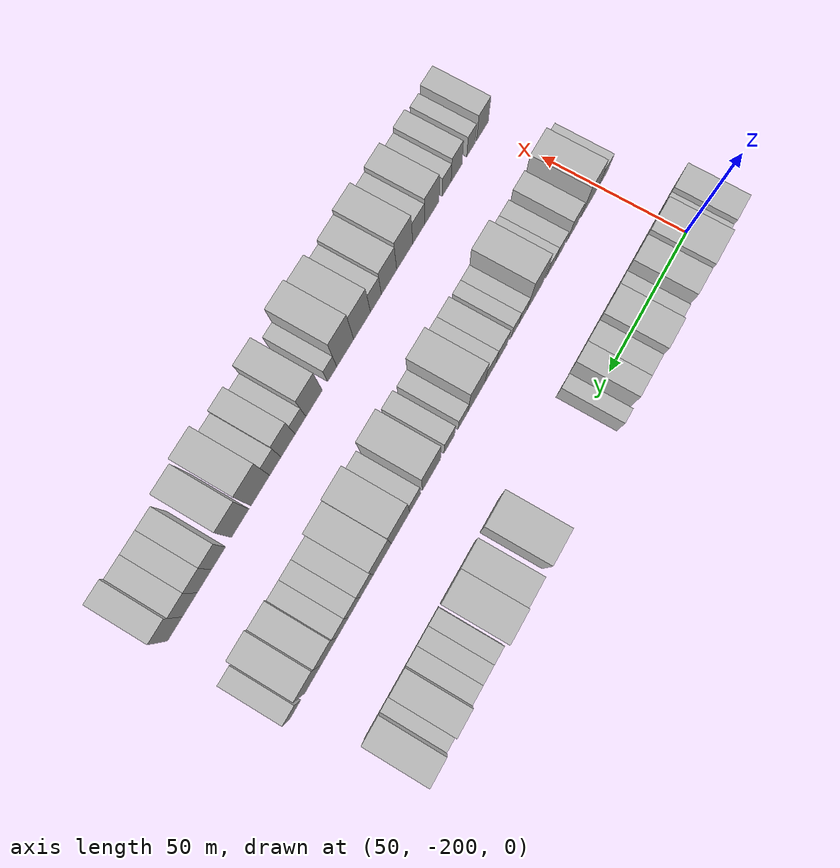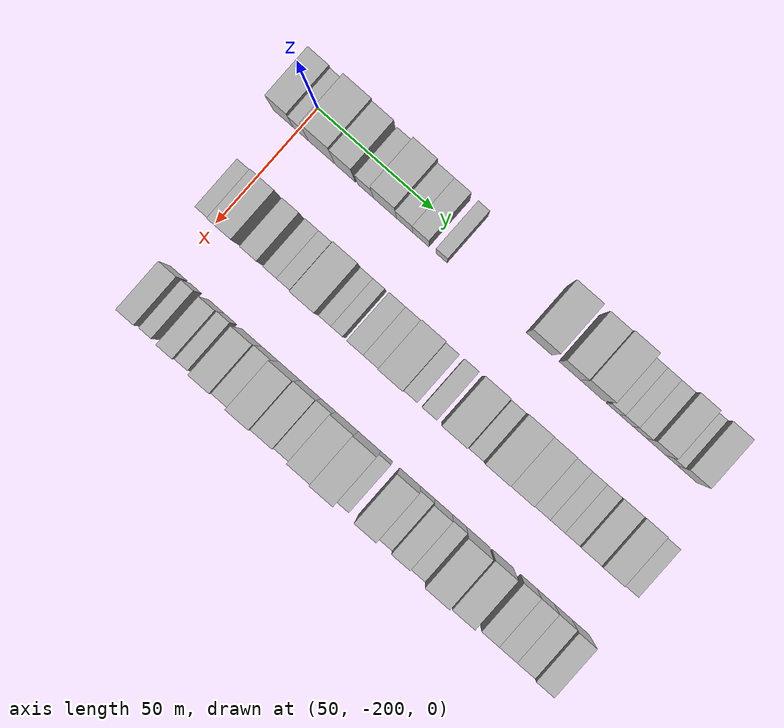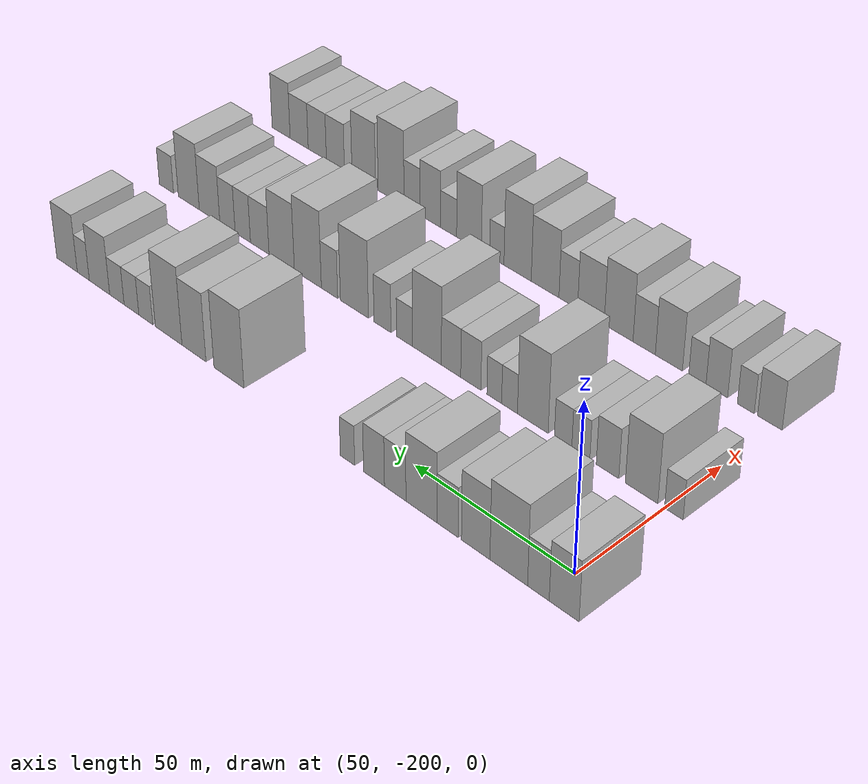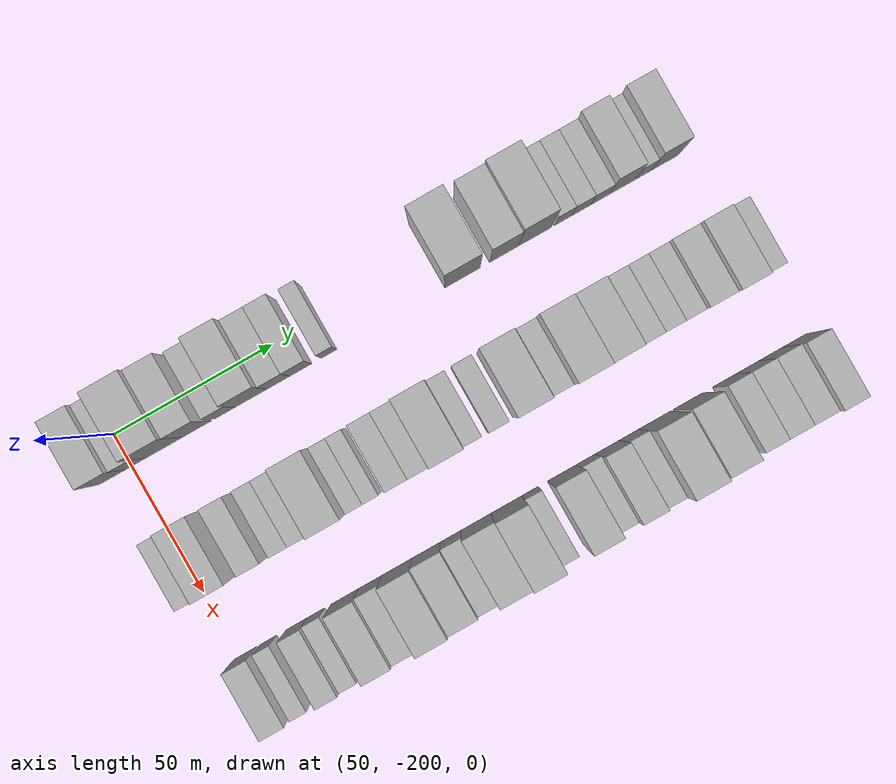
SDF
<sdf version="1.6">
 <world name="default">
  <model name="building_20">
   <static>1</static>
   <pose>50.0000 -205.8863 0 0.000000 0.000000 0.000000</pose>
   <link name="link">
    <pose>0 0 9.00 0 0 0</pose>
    <collision name="collision"><geometry><box><size>20.0000 8.7325 18.0000</size></box></geometry></collision>
    <visual name="visual">
     <cast_shadows>0</cast_shadows>
     <geometry><box><size>20.0000 8.7325 18.0000</size></box></geometry>
     <material>
      <script>
       <uri>model://HANNAS_wall/materials/scripts</uri>
       <uri>model://HANNAS_wall/materials/textures</uri>
       <name>vrc/HANNAS_wall</name>
      </script>
     </material>
    </visual>
   </link>
  </model>
  <model name="building_21">
   <static>1</static>
   <pose>50.0000 -198.3036 0 0.000000 0.000000 0.000000</pose>
   <link name="link">
    <pose>0 0 7.50 0 0 0</pose>
    <collision name="collision"><geometry><box><size>20.0000 6.4328 15.0000</size></box></geometry></collision>
    <visual name="visual">
     <cast_shadows>0</cast_shadows>
     <geometry><box><size>20.0000 6.4328 15.0000</size></box></geometry>
     <material>
      <script>
       <uri>model://HANNAS_wall/materials/scripts</uri>
       <uri>model://HANNAS_wall/materials/textures</uri>
       <name>vrc/HANNAS_wall</name>
      </script>
     </material>
    </visual>
   </link>
  </model>
  <model name="building_22">
   <static>1</static>
   <pose>50.0000 -189.3780 0 0.000000 0.000000 0.000000</pose>
   <link name="link">
    <pose>0 0 12.00 0 0 0</pose>
    <collision name="collision"><geometry><box><size>20.0000 11.4183 24.0000</size></box></geometry></collision>
    <visual name="visual">
     <cast_shadows>0</cast_shadows>
     <geometry><box><size>20.0000 11.4183 24.0000</size></box></geometry>
     <material>
      <script>
       <uri>model://HANNAS_wall/materials/scripts</uri>
       <uri>model://HANNAS_wall/materials/textures</uri>
       <name>vrc/HANNAS_wall</name>
      </script>
     </material>
    </visual>
   </link>
  </model>
  <model name="building_23">
   <static>1</static>
   <pose>50.0000 -179.2558 0 0.000000 0.000000 0.000000</pose>
   <link name="link">
    <pose>0 0 10.50 0 0 0</pose>
    <collision name="collision"><geometry><box><size>20.0000 8.8261 21.0000</size></box></geometry></collision>
    <visual name="visual">
     <cast_shadows>0</cast_shadows>
     <geometry><box><size>20.0000 8.8261 21.0000</size></box></geometry>
     <material>
      <script>
       <uri>model://HANNAS_wall/materials/scripts</uri>
       <uri>model://HANNAS_wall/materials/textures</uri>
       <name>vrc/HANNAS_wall</name>
      </script>
     </material>
    </visual>
   </link>
  </model>
  <model name="building_24">
   <static>1</static>
   <pose>50.0000 -170.4617 0 0.000000 0.000000 0.000000</pose>
   <link name="link">
    <pose>0 0 7.50 0 0 0</pose>
    <collision name="collision"><geometry><box><size>20.0000 6.7623 15.0000</size></box></geometry></collision>
    <visual name="visual">
     <cast_shadows>0</cast_shadows>
     <geometry><box><size>20.0000 6.7623 15.0000</size></box></geometry>
     <material>
      <script>
       <uri>model://HANNAS_wall/materials/scripts</uri>
       <uri>model://HANNAS_wall/materials/textures</uri>
       <name>vrc/HANNAS_wall</name>
      </script>
     </material>
    </visual>
   </link>
  </model>
  <model name="building_25">
   <static>1</static>
   <pose>50.0000 -162.0991 0 0.000000 0.000000 0.000000</pose>
   <link name="link">
    <pose>0 0 10.50 0 0 0</pose>
    <collision name="collision"><geometry><box><size>20.0000 9.9630 21.0000</size></box></geometry></collision>
    <visual name="visual">
     <cast_shadows>0</cast_shadows>
     <geometry><box><size>20.0000 9.9630 21.0000</size></box></geometry>
     <material>
      <script>
       <uri>model://HANNAS_wall/materials/scripts</uri>
       <uri>model://HANNAS_wall/materials/textures</uri>
       <name>vrc/HANNAS_wall</name>
      </script>
     </material>
    </visual>
   </link>
  </model>
  <model name="building_26">
   <static>1</static>
   <pose>50.0000 -153.5990 0 0.000000 0.000000 0.000000</pose>
   <link name="link">
    <pose>0 0 7.50 0 0 0</pose>
    <collision name="collision"><geometry><box><size>20.0000 7.0372 15.0000</size></box></geometry></collision>
    <visual name="visual">
     <cast_shadows>0</cast_shadows>
     <geometry><box><size>20.0000 7.0372 15.0000</size></box></geometry>
     <material>
      <script>
       <uri>model://HANNAS_wall/materials/scripts</uri>
       <uri>model://HANNAS_wall/materials/textures</uri>
       <name>vrc/HANNAS_wall</name>
      </script>
     </material>
    </visual>
   </link>
  </model>
  <model name="building_27">
   <static>1</static>
   <pose>50.0000 -146.6051 0 0.000000 0.000000 0.000000</pose>
   <link name="link">
    <pose>0 0 7.50 0 0 0</pose>
    <collision name="collision"><geometry><box><size>20.0000 6.9507 15.0000</size></box></geometry></collision>
    <visual name="visual">
     <cast_shadows>0</cast_shadows>
     <geometry><box><size>20.0000 6.9507 15.0000</size></box></geometry>
     <material>
      <script>
       <uri>model://HANNAS_wall/materials/scripts</uri>
       <uri>model://HANNAS_wall/materials/textures</uri>
       <name>vrc/HANNAS_wall</name>
      </script>
     </material>
    </visual>
   </link>
  </model>
  <model name="building_28">
   <static>1</static>
   <pose>50.0000 -137.6963 0 0.000000 0.000000 0.000000</pose>
   <link name="link">
    <pose>0 0 6.00 0 0 0</pose>
    <collision name="collision"><geometry><box><size>20.0000 4.8668 12.0000</size></box></geometry></collision>
    <visual name="visual">
     <cast_shadows>0</cast_shadows>
     <geometry><box><size>20.0000 4.8668 12.0000</size></box></geometry>
     <material>
      <script>
       <uri>model://HANNAS_wall/materials/scripts</uri>
       <uri>model://HANNAS_wall/materials/textures</uri>
       <name>vrc/HANNAS_wall</name>
      </script>
     </material>
    </visual>
   </link>
  </model>
  <model name="building_29">
   <static>1</static>
   <pose>50.0000 -95.6276 0 0.000000 0.000000 0.000000</pose>
   <link name="link">
    <pose>0 0 12.00 0 0 0</pose>
    <collision name="collision"><geometry><box><size>20.0000 11.0902 24.0000</size></box></geometry></collision>
    <visual name="visual">
     <cast_shadows>0</cast_shadows>
     <geometry><box><size>20.0000 11.0902 24.0000</size></box></geometry>
     <material>
      <script>
       <uri>model://HANNAS_wall/materials/scripts</uri>
       <uri>model://HANNAS_wall/materials/textures</uri>
       <name>vrc/HANNAS_wall</name>
      </script>
     </material>
    </visual>
   </link>
  </model>
  <model name="building_30">
   <static>1</static>
   <pose>50.0000 -82.5195 0 0.000000 0.000000 0.000000</pose>
   <link name="link">
    <pose>0 0 10.50 0 0 0</pose>
    <collision name="collision"><geometry><box><size>20.0000 9.1260 21.0000</size></box></geometry></collision>
    <visual name="visual">
     <cast_shadows>0</cast_shadows>
     <geometry><box><size>20.0000 9.1260 21.0000</size></box></geometry>
     <material>
      <script>
       <uri>model://HANNAS_wall/materials/scripts</uri>
       <uri>model://HANNAS_wall/materials/textures</uri>
       <name>vrc/HANNAS_wall</name>
      </script>
     </material>
    </visual>
   </link>
  </model>
  <model name="building_31">
   <static>1</static>
   <pose>50.0000 -72.8007 0 0.000000 0.000000 0.000000</pose>
   <link name="link">
    <pose>0 0 12.00 0 0 0</pose>
    <collision name="collision"><geometry><box><size>20.0000 10.3116 24.0000</size></box></geometry></collision>
    <visual name="visual">
     <cast_shadows>0</cast_shadows>
     <geometry><box><size>20.0000 10.3116 24.0000</size></box></geometry>
     <material>
      <script>
       <uri>model://HANNAS_wall/materials/scripts</uri>
       <uri>model://HANNAS_wall/materials/textures</uri>
       <name>vrc/HANNAS_wall</name>
      </script>
     </material>
    </visual>
   </link>
  </model>
  <model name="building_32">
   <static>1</static>
   <pose>50.0000 -63.9002 0 0.000000 0.000000 0.000000</pose>
   <link name="link">
    <pose>0 0 6.00 0 0 0</pose>
    <collision name="collision"><geometry><box><size>20.0000 5.4893 12.0000</size></box></geometry></collision>
    <visual name="visual">
     <cast_shadows>0</cast_shadows>
     <geometry><box><size>20.0000 5.4893 12.0000</size></box></geometry>
     <material>
      <script>
       <uri>model://HANNAS_wall/materials/scripts</uri>
       <uri>model://HANNAS_wall/materials/textures</uri>
       <name>vrc/HANNAS_wall</name>
      </script>
     </material>
    </visual>
   </link>
  </model>
  <model name="building_33">
   <static>1</static>
   <pose>50.0000 -58.2118 0 0.000000 0.000000 0.000000</pose>
   <link name="link">
    <pose>0 0 6.00 0 0 0</pose>
    <collision name="collision"><geometry><box><size>20.0000 5.8876 12.0000</size></box></geometry></collision>
    <visual name="visual">
     <cast_shadows>0</cast_shadows>
     <geometry><box><size>20.0000 5.8876 12.0000</size></box></geometry>
     <material>
      <script>
       <uri>model://HANNAS_wall/materials/scripts</uri>
       <uri>model://HANNAS_wall/materials/textures</uri>
       <name>vrc/HANNAS_wall</name>
      </script>
     </material>
    </visual>
   </link>
  </model>
  <model name="building_34">
   <static>1</static>
   <pose>50.0000 -52.3605 0 0.000000 0.000000 0.000000</pose>
   <link name="link">
    <pose>0 0 6.00 0 0 0</pose>
    <collision name="collision"><geometry><box><size>20.0000 5.8150 12.0000</size></box></geometry></collision>
    <visual name="visual">
     <cast_shadows>0</cast_shadows>
     <geometry><box><size>20.0000 5.8150 12.0000</size></box></geometry>
     <material>
      <script>
       <uri>model://HANNAS_wall/materials/scripts</uri>
       <uri>model://HANNAS_wall/materials/textures</uri>
       <name>vrc/HANNAS_wall</name>
      </script>
     </material>
    </visual>
   </link>
  </model>
  <model name="building_35">
   <static>1</static>
   <pose>50.0000 -45.2848 0 0.000000 0.000000 0.000000</pose>
   <link name="link">
    <pose>0 0 9.00 0 0 0</pose>
    <collision name="collision"><geometry><box><size>20.0000 8.3363 18.0000</size></box></geometry></collision>
    <visual name="visual">
     <cast_shadows>0</cast_shadows>
     <geometry><box><size>20.0000 8.3363 18.0000</size></box></geometry>
     <material>
      <script>
       <uri>model://HANNAS_wall/materials/scripts</uri>
       <uri>model://HANNAS_wall/materials/textures</uri>
       <name>vrc/HANNAS_wall</name>
      </script>
     </material>
    </visual>
   </link>
  </model>
  <model name="building_36">
   <static>1</static>
   <pose>50.0000 -38.6339 0 0.000000 0.000000 0.000000</pose>
   <link name="link">
    <pose>0 0 6.00 0 0 0</pose>
    <collision name="collision"><geometry><box><size>20.0000 4.9655 12.0000</size></box></geometry></collision>
    <visual name="visual">
     <cast_shadows>0</cast_shadows>
     <geometry><box><size>20.0000 4.9655 12.0000</size></box></geometry>
     <material>
      <script>
       <uri>model://HANNAS_wall/materials/scripts</uri>
       <uri>model://HANNAS_wall/materials/textures</uri>
       <name>vrc/HANNAS_wall</name>
      </script>
     </material>
    </visual>
   </link>
  </model>
  <model name="building_37">
   <static>1</static>
   <pose>50.0000 -31.8474 0 0.000000 0.000000 0.000000</pose>
   <link name="link">
    <pose>0 0 9.00 0 0 0</pose>
    <collision name="collision"><geometry><box><size>20.0000 8.6075 18.0000</size></box></geometry></collision>
    <visual name="visual">
     <cast_shadows>0</cast_shadows>
     <geometry><box><size>20.0000 8.6075 18.0000</size></box></geometry>
     <material>
      <script>
       <uri>model://HANNAS_wall/materials/scripts</uri>
       <uri>model://HANNAS_wall/materials/textures</uri>
       <name>vrc/HANNAS_wall</name>
      </script>
     </material>
    </visual>
   </link>
  </model>
  <model name="building_104">
   <static>1</static>
   <pose>90.0000 -202.6793 0 0.000000 0.000000 0.000000</pose>
   <link name="link">
    <pose>0 0 6.00 0 0 0</pose>
    <collision name="collision"><geometry><box><size>20.0000 5.5001 12.0000</size></box></geometry></collision>
    <visual name="visual">
     <cast_shadows>0</cast_shadows>
     <geometry><box><size>20.0000 5.5001 12.0000</size></box></geometry>
     <material>
      <script>
       <uri>model://HANNAS_wall/materials/scripts</uri>
       <uri>model://HANNAS_wall/materials/textures</uri>
       <name>vrc/HANNAS_wall</name>
      </script>
     </material>
    </visual>
   </link>
  </model>
  <model name="building_105">
   <static>1</static>
   <pose>90.0000 -193.0172 0 0.000000 0.000000 0.000000</pose>
   <link name="link">
    <pose>0 0 10.50 0 0 0</pose>
    <collision name="collision"><geometry><box><size>20.0000 9.8241 21.0000</size></box></geometry></collision>
    <visual name="visual">
     <cast_shadows>0</cast_shadows>
     <geometry><box><size>20.0000 9.8241 21.0000</size></box></geometry>
     <material>
      <script>
       <uri>model://HANNAS_wall/materials/scripts</uri>
       <uri>model://HANNAS_wall/materials/textures</uri>
       <name>vrc/HANNAS_wall</name>
      </script>
     </material>
    </visual>
   </link>
  </model>
  <model name="building_106">
   <static>1</static>
   <pose>90.0000 -182.6263 0 0.000000 0.000000 0.000000</pose>
   <link name="link">
    <pose>0 0 7.50 0 0 0</pose>
    <collision name="collision"><geometry><box><size>20.0000 6.9576 15.0000</size></box></geometry></collision>
    <visual name="visual">
     <cast_shadows>0</cast_shadows>
     <geometry><box><size>20.0000 6.9576 15.0000</size></box></geometry>
     <material>
      <script>
       <uri>model://HANNAS_wall/materials/scripts</uri>
       <uri>model://HANNAS_wall/materials/textures</uri>
       <name>vrc/HANNAS_wall</name>
      </script>
     </material>
    </visual>
   </link>
  </model>
  <model name="building_107">
   <static>1</static>
   <pose>90.0000 -174.3154 0 0.000000 0.000000 0.000000</pose>
   <link name="link">
    <pose>0 0 6.00 0 0 0</pose>
    <collision name="collision"><geometry><box><size>20.0000 5.6642 12.0000</size></box></geometry></collision>
    <visual name="visual">
     <cast_shadows>0</cast_shadows>
     <geometry><box><size>20.0000 5.6642 12.0000</size></box></geometry>
     <material>
      <script>
       <uri>model://HANNAS_wall/materials/scripts</uri>
       <uri>model://HANNAS_wall/materials/textures</uri>
       <name>vrc/HANNAS_wall</name>
      </script>
     </material>
    </visual>
   </link>
  </model>
  <model name="building_108">
   <static>1</static>
   <pose>90.0000 -168.7181 0 0.000000 0.000000 0.000000</pose>
   <link name="link">
    <pose>0 0 6.00 0 0 0</pose>
    <collision name="collision"><geometry><box><size>20.0000 5.5303 12.0000</size></box></geometry></collision>
    <visual name="visual">
     <cast_shadows>0</cast_shadows>
     <geometry><box><size>20.0000 5.5303 12.0000</size></box></geometry>
     <material>
      <script>
       <uri>model://HANNAS_wall/materials/scripts</uri>
       <uri>model://HANNAS_wall/materials/textures</uri>
       <name>vrc/HANNAS_wall</name>
      </script>
     </material>
    </visual>
   </link>
  </model>
  <model name="building_109">
   <static>1</static>
   <pose>90.0000 -158.9692 0 0.000000 0.000000 0.000000</pose>
   <link name="link">
    <pose>0 0 12.00 0 0 0</pose>
    <collision name="collision"><geometry><box><size>20.0000 9.9676 24.0000</size></box></geometry></collision>
    <visual name="visual">
     <cast_shadows>0</cast_shadows>
     <geometry><box><size>20.0000 9.9676 24.0000</size></box></geometry>
     <material>
      <script>
       <uri>model://HANNAS_wall/materials/scripts</uri>
       <uri>model://HANNAS_wall/materials/textures</uri>
       <name>vrc/HANNAS_wall</name>
      </script>
     </material>
    </visual>
   </link>
  </model>
  <model name="building_110">
   <static>1</static>
   <pose>90.0000 -151.3795 0 0.000000 0.000000 0.000000</pose>
   <link name="link">
    <pose>0 0 6.00 0 0 0</pose>
    <collision name="collision"><geometry><box><size>20.0000 5.2117 12.0000</size></box></geometry></collision>
    <visual name="visual">
     <cast_shadows>0</cast_shadows>
     <geometry><box><size>20.0000 5.2117 12.0000</size></box></geometry>
     <material>
      <script>
       <uri>model://HANNAS_wall/materials/scripts</uri>
       <uri>model://HANNAS_wall/materials/textures</uri>
       <name>vrc/HANNAS_wall</name>
      </script>
     </material>
    </visual>
   </link>
  </model>
  <model name="building_111">
   <static>1</static>
   <pose>90.0000 -146.3286 0 0.000000 0.000000 0.000000</pose>
   <link name="link">
    <pose>0 0 6.00 0 0 0</pose>
    <collision name="collision"><geometry><box><size>20.0000 4.8902 12.0000</size></box></geometry></collision>
    <visual name="visual">
     <cast_shadows>0</cast_shadows>
     <geometry><box><size>20.0000 4.8902 12.0000</size></box></geometry>
     <material>
      <script>
       <uri>model://HANNAS_wall/materials/scripts</uri>
       <uri>model://HANNAS_wall/materials/textures</uri>
       <name>vrc/HANNAS_wall</name>
      </script>
     </material>
    </visual>
   </link>
  </model>
  <model name="building_112">
   <static>1</static>
   <pose>90.0000 -138.4597 0 0.000000 0.000000 0.000000</pose>
   <link name="link">
    <pose>0 0 7.50 0 0 0</pose>
    <collision name="collision"><geometry><box><size>20.0000 6.8476 15.0000</size></box></geometry></collision>
    <visual name="visual">
     <cast_shadows>0</cast_shadows>
     <geometry><box><size>20.0000 6.8476 15.0000</size></box></geometry>
     <material>
      <script>
       <uri>model://HANNAS_wall/materials/scripts</uri>
       <uri>model://HANNAS_wall/materials/textures</uri>
       <name>vrc/HANNAS_wall</name>
      </script>
     </material>
    </visual>
   </link>
  </model>
  <model name="building_113">
   <static>1</static>
   <pose>90.0000 -131.7235 0 0.000000 0.000000 0.000000</pose>
   <link name="link">
    <pose>0 0 7.50 0 0 0</pose>
    <collision name="collision"><geometry><box><size>20.0000 6.6249 15.0000</size></box></geometry></collision>
    <visual name="visual">
     <cast_shadows>0</cast_shadows>
     <geometry><box><size>20.0000 6.6249 15.0000</size></box></geometry>
     <material>
      <script>
       <uri>model://HANNAS_wall/materials/scripts</uri>
       <uri>model://HANNAS_wall/materials/textures</uri>
       <name>vrc/HANNAS_wall</name>
      </script>
     </material>
    </visual>
   </link>
  </model>
  <model name="building_114">
   <static>1</static>
   <pose>90.0000 -123.3767 0 0.000000 0.000000 0.000000</pose>
   <link name="link">
    <pose>0 0 12.00 0 0 0</pose>
    <collision name="collision"><geometry><box><size>20.0000 10.0687 24.0000</size></box></geometry></collision>
    <visual name="visual">
     <cast_shadows>0</cast_shadows>
     <geometry><box><size>20.0000 10.0687 24.0000</size></box></geometry>
     <material>
      <script>
       <uri>model://HANNAS_wall/materials/scripts</uri>
       <uri>model://HANNAS_wall/materials/textures</uri>
       <name>vrc/HANNAS_wall</name>
      </script>
     </material>
    </visual>
   </link>
  </model>
  <model name="building_115">
   <static>1</static>
   <pose>90.0000 -115.5146 0 0.000000 0.000000 0.000000</pose>
   <link name="link">
    <pose>0 0 6.00 0 0 0</pose>
    <collision name="collision"><geometry><box><size>20.0000 5.6555 12.0000</size></box></geometry></collision>
    <visual name="visual">
     <cast_shadows>0</cast_shadows>
     <geometry><box><size>20.0000 5.6555 12.0000</size></box></geometry>
     <material>
      <script>
       <uri>model://HANNAS_wall/materials/scripts</uri>
       <uri>model://HANNAS_wall/materials/textures</uri>
       <name>vrc/HANNAS_wall</name>
      </script>
     </material>
    </visual>
   </link>
  </model>
  <model name="building_116">
   <static>1</static>
   <pose>90.0000 -107.6284 0 0.000000 0.000000 0.000000</pose>
   <link name="link">
    <pose>0 0 7.50 0 0 0</pose>
    <collision name="collision"><geometry><box><size>20.0000 6.1169 15.0000</size></box></geometry></collision>
    <visual name="visual">
     <cast_shadows>0</cast_shadows>
     <geometry><box><size>20.0000 6.1169 15.0000</size></box></geometry>
     <material>
      <script>
       <uri>model://HANNAS_wall/materials/scripts</uri>
       <uri>model://HANNAS_wall/materials/textures</uri>
       <name>vrc/HANNAS_wall</name>
      </script>
     </material>
    </visual>
   </link>
  </model>
  <model name="building_117">
   <static>1</static>
   <pose>90.0000 -97.4233 0 0.000000 0.000000 0.000000</pose>
   <link name="link">
    <pose>0 0 12.00 0 0 0</pose>
    <collision name="collision"><geometry><box><size>20.0000 10.2933 24.0000</size></box></geometry></collision>
    <visual name="visual">
     <cast_shadows>0</cast_shadows>
     <geometry><box><size>20.0000 10.2933 24.0000</size></box></geometry>
     <material>
      <script>
       <uri>model://HANNAS_wall/materials/scripts</uri>
       <uri>model://HANNAS_wall/materials/textures</uri>
       <name>vrc/HANNAS_wall</name>
      </script>
     </material>
    </visual>
   </link>
  </model>
  <model name="building_118">
   <static>1</static>
   <pose>90.0000 -88.2291 0 0.000000 0.000000 0.000000</pose>
   <link name="link">
    <pose>0 0 7.50 0 0 0</pose>
    <collision name="collision"><geometry><box><size>20.0000 6.0952 15.0000</size></box></geometry></collision>
    <visual name="visual">
     <cast_shadows>0</cast_shadows>
     <geometry><box><size>20.0000 6.0952 15.0000</size></box></geometry>
     <material>
      <script>
       <uri>model://HANNAS_wall/materials/scripts</uri>
       <uri>model://HANNAS_wall/materials/textures</uri>
       <name>vrc/HANNAS_wall</name>
      </script>
     </material>
    </visual>
   </link>
  </model>
  <model name="building_119">
   <static>1</static>
   <pose>90.0000 -80.0555 0 0.000000 0.000000 0.000000</pose>
   <link name="link">
    <pose>0 0 12.00 0 0 0</pose>
    <collision name="collision"><geometry><box><size>20.0000 10.2520 24.0000</size></box></geometry></collision>
    <visual name="visual">
     <cast_shadows>0</cast_shadows>
     <geometry><box><size>20.0000 10.2520 24.0000</size></box></geometry>
     <material>
      <script>
       <uri>model://HANNAS_wall/materials/scripts</uri>
       <uri>model://HANNAS_wall/materials/textures</uri>
       <name>vrc/HANNAS_wall</name>
      </script>
     </material>
    </visual>
   </link>
  </model>
  <model name="building_120">
   <static>1</static>
   <pose>90.0000 -70.0179 0 0.000000 0.000000 0.000000</pose>
   <link name="link">
    <pose>0 0 10.50 0 0 0</pose>
    <collision name="collision"><geometry><box><size>20.0000 9.8232 21.0000</size></box></geometry></collision>
    <visual name="visual">
     <cast_shadows>0</cast_shadows>
     <geometry><box><size>20.0000 9.8232 21.0000</size></box></geometry>
     <material>
      <script>
       <uri>model://HANNAS_wall/materials/scripts</uri>
       <uri>model://HANNAS_wall/materials/textures</uri>
       <name>vrc/HANNAS_wall</name>
      </script>
     </material>
    </visual>
   </link>
  </model>
  <model name="building_121">
   <static>1</static>
   <pose>90.0000 -61.4573 0 0.000000 0.000000 0.000000</pose>
   <link name="link">
    <pose>0 0 7.50 0 0 0</pose>
    <collision name="collision"><geometry><box><size>20.0000 7.2979 15.0000</size></box></geometry></collision>
    <visual name="visual">
     <cast_shadows>0</cast_shadows>
     <geometry><box><size>20.0000 7.2979 15.0000</size></box></geometry>
     <material>
      <script>
       <uri>model://HANNAS_wall/materials/scripts</uri>
       <uri>model://HANNAS_wall/materials/textures</uri>
       <name>vrc/HANNAS_wall</name>
      </script>
     </material>
    </visual>
   </link>
  </model>
  <model name="building_122">
   <static>1</static>
   <pose>90.0000 -54.7589 0 0.000000 0.000000 0.000000</pose>
   <link name="link">
    <pose>0 0 7.50 0 0 0</pose>
    <collision name="collision"><geometry><box><size>20.0000 6.0988 15.0000</size></box></geometry></collision>
    <visual name="visual">
     <cast_shadows>0</cast_shadows>
     <geometry><box><size>20.0000 6.0988 15.0000</size></box></geometry>
     <material>
      <script>
       <uri>model://HANNAS_wall/materials/scripts</uri>
       <uri>model://HANNAS_wall/materials/textures</uri>
       <name>vrc/HANNAS_wall</name>
      </script>
     </material>
    </visual>
   </link>
  </model>
  <model name="building_123">
   <static>1</static>
   <pose>90.0000 -48.6196 0 0.000000 0.000000 0.000000</pose>
   <link name="link">
    <pose>0 0 7.50 0 0 0</pose>
    <collision name="collision"><geometry><box><size>20.0000 6.1800 15.0000</size></box></geometry></collision>
    <visual name="visual">
     <cast_shadows>0</cast_shadows>
     <geometry><box><size>20.0000 6.1800 15.0000</size></box></geometry>
     <material>
      <script>
       <uri>model://HANNAS_wall/materials/scripts</uri>
       <uri>model://HANNAS_wall/materials/textures</uri>
       <name>vrc/HANNAS_wall</name>
      </script>
     </material>
    </visual>
   </link>
  </model>
  <model name="building_124">
   <static>1</static>
   <pose>90.0000 -41.3295 0 0.000000 0.000000 0.000000</pose>
   <link name="link">
    <pose>0 0 9.00 0 0 0</pose>
    <collision name="collision"><geometry><box><size>20.0000 8.4002 18.0000</size></box></geometry></collision>
    <visual name="visual">
     <cast_shadows>0</cast_shadows>
     <geometry><box><size>20.0000 8.4002 18.0000</size></box></geometry>
     <material>
      <script>
       <uri>model://HANNAS_wall/materials/scripts</uri>
       <uri>model://HANNAS_wall/materials/textures</uri>
       <name>vrc/HANNAS_wall</name>
      </script>
     </material>
    </visual>
   </link>
  </model>
  <model name="building_125">
   <static>1</static>
   <pose>90.0000 -32.7855 0 0.000000 0.000000 0.000000</pose>
   <link name="link">
    <pose>0 0 10.50 0 0 0</pose>
    <collision name="collision"><geometry><box><size>20.0000 8.6879 21.0000</size></box></geometry></collision>
    <visual name="visual">
     <cast_shadows>0</cast_shadows>
     <geometry><box><size>20.0000 8.6879 21.0000</size></box></geometry>
     <material>
      <script>
       <uri>model://HANNAS_wall/materials/scripts</uri>
       <uri>model://HANNAS_wall/materials/textures</uri>
       <name>vrc/HANNAS_wall</name>
      </script>
     </material>
    </visual>
   </link>
  </model>
  <model name="building_126">
   <static>1</static>
   <pose>90.0000 -23.4608 0 0.000000 0.000000 0.000000</pose>
   <link name="link">
    <pose>0 0 6.00 0 0 0</pose>
    <collision name="collision"><geometry><box><size>20.0000 5.9614 12.0000</size></box></geometry></collision>
    <visual name="visual">
     <cast_shadows>0</cast_shadows>
     <geometry><box><size>20.0000 5.9614 12.0000</size></box></geometry>
     <material>
      <script>
       <uri>model://HANNAS_wall/materials/scripts</uri>
       <uri>model://HANNAS_wall/materials/textures</uri>
       <name>vrc/HANNAS_wall</name>
      </script>
     </material>
    </visual>
   </link>
  </model>
  <model name="building_191">
   <static>1</static>
   <pose>130.0000 -198.2540 0 0.000000 0.000000 0.000000</pose>
   <link name="link">
    <pose>0 0 7.50 0 0 0</pose>
    <collision name="collision"><geometry><box><size>20.0000 7.3863 15.0000</size></box></geometry></collision>
    <visual name="visual">
     <cast_shadows>0</cast_shadows>
     <geometry><box><size>20.0000 7.3863 15.0000</size></box></geometry>
     <material>
      <script>
       <uri>model://HANNAS_wall/materials/scripts</uri>
       <uri>model://HANNAS_wall/materials/textures</uri>
       <name>vrc/HANNAS_wall</name>
      </script>
     </material>
    </visual>
   </link>
  </model>
  <model name="building_192">
   <static>1</static>
   <pose>130.0000 -190.9844 0 0.000000 0.000000 0.000000</pose>
   <link name="link">
    <pose>0 0 6.00 0 0 0</pose>
    <collision name="collision"><geometry><box><size>20.0000 5.1531 12.0000</size></box></geometry></collision>
    <visual name="visual">
     <cast_shadows>0</cast_shadows>
     <geometry><box><size>20.0000 5.1531 12.0000</size></box></geometry>
     <material>
      <script>
       <uri>model://HANNAS_wall/materials/scripts</uri>
       <uri>model://HANNAS_wall/materials/textures</uri>
       <name>vrc/HANNAS_wall</name>
      </script>
     </material>
    </visual>
   </link>
  </model>
  <model name="building_193">
   <static>1</static>
   <pose>130.0000 -182.0428 0 0.000000 0.000000 0.000000</pose>
   <link name="link">
    <pose>0 0 7.50 0 0 0</pose>
    <collision name="collision"><geometry><box><size>20.0000 6.7300 15.0000</size></box></geometry></collision>
    <visual name="visual">
     <cast_shadows>0</cast_shadows>
     <geometry><box><size>20.0000 6.7300 15.0000</size></box></geometry>
     <material>
      <script>
       <uri>model://HANNAS_wall/materials/scripts</uri>
       <uri>model://HANNAS_wall/materials/textures</uri>
       <name>vrc/HANNAS_wall</name>
      </script>
     </material>
    </visual>
   </link>
  </model>
  <model name="building_194">
   <static>1</static>
   <pose>130.0000 -175.9692 0 0.000000 0.000000 0.000000</pose>
   <link name="link">
    <pose>0 0 6.00 0 0 0</pose>
    <collision name="collision"><geometry><box><size>20.0000 5.4172 12.0000</size></box></geometry></collision>
    <visual name="visual">
     <cast_shadows>0</cast_shadows>
     <geometry><box><size>20.0000 5.4172 12.0000</size></box></geometry>
     <material>
      <script>
       <uri>model://HANNAS_wall/materials/scripts</uri>
       <uri>model://HANNAS_wall/materials/textures</uri>
       <name>vrc/HANNAS_wall</name>
      </script>
     </material>
    </visual>
   </link>
  </model>
  <model name="building_195">
   <static>1</static>
   <pose>130.0000 -166.9129 0 0.000000 0.000000 0.000000</pose>
   <link name="link">
    <pose>0 0 9.00 0 0 0</pose>
    <collision name="collision"><geometry><box><size>20.0000 8.6955 18.0000</size></box></geometry></collision>
    <visual name="visual">
     <cast_shadows>0</cast_shadows>
     <geometry><box><size>20.0000 8.6955 18.0000</size></box></geometry>
     <material>
      <script>
       <uri>model://HANNAS_wall/materials/scripts</uri>
       <uri>model://HANNAS_wall/materials/textures</uri>
       <name>vrc/HANNAS_wall</name>
      </script>
     </material>
    </visual>
   </link>
  </model>
  <model name="building_196">
   <static>1</static>
   <pose>130.0000 -158.9371 0 0.000000 0.000000 0.000000</pose>
   <link name="link">
    <pose>0 0 7.50 0 0 0</pose>
    <collision name="collision"><geometry><box><size>20.0000 7.2561 15.0000</size></box></geometry></collision>
    <visual name="visual">
     <cast_shadows>0</cast_shadows>
     <geometry><box><size>20.0000 7.2561 15.0000</size></box></geometry>
     <material>
      <script>
       <uri>model://HANNAS_wall/materials/scripts</uri>
       <uri>model://HANNAS_wall/materials/textures</uri>
       <name>vrc/HANNAS_wall</name>
      </script>
     </material>
    </visual>
   </link>
  </model>
  <model name="building_197">
   <static>1</static>
   <pose>130.0000 -150.5359 0 0.000000 0.000000 0.000000</pose>
   <link name="link">
    <pose>0 0 10.50 0 0 0</pose>
    <collision name="collision"><geometry><box><size>20.0000 9.5463 21.0000</size></box></geometry></collision>
    <visual name="visual">
     <cast_shadows>0</cast_shadows>
     <geometry><box><size>20.0000 9.5463 21.0000</size></box></geometry>
     <material>
      <script>
       <uri>model://HANNAS_wall/materials/scripts</uri>
       <uri>model://HANNAS_wall/materials/textures</uri>
       <name>vrc/HANNAS_wall</name>
      </script>
     </material>
    </visual>
   </link>
  </model>
  <model name="building_198">
   <static>1</static>
   <pose>130.0000 -141.2788 0 0.000000 0.000000 0.000000</pose>
   <link name="link">
    <pose>0 0 9.00 0 0 0</pose>
    <collision name="collision"><geometry><box><size>20.0000 8.9678 18.0000</size></box></geometry></collision>
    <visual name="visual">
     <cast_shadows>0</cast_shadows>
     <geometry><box><size>20.0000 8.9678 18.0000</size></box></geometry>
     <material>
      <script>
       <uri>model://HANNAS_wall/materials/scripts</uri>
       <uri>model://HANNAS_wall/materials/textures</uri>
       <name>vrc/HANNAS_wall</name>
      </script>
     </material>
    </visual>
   </link>
  </model>
  <model name="building_199">
   <static>1</static>
   <pose>130.0000 -133.6092 0 0.000000 0.000000 0.000000</pose>
   <link name="link">
    <pose>0 0 7.50 0 0 0</pose>
    <collision name="collision"><geometry><box><size>20.0000 6.3714 15.0000</size></box></geometry></collision>
    <visual name="visual">
     <cast_shadows>0</cast_shadows>
     <geometry><box><size>20.0000 6.3714 15.0000</size></box></geometry>
     <material>
      <script>
       <uri>model://HANNAS_wall/materials/scripts</uri>
       <uri>model://HANNAS_wall/materials/textures</uri>
       <name>vrc/HANNAS_wall</name>
      </script>
     </material>
    </visual>
   </link>
  </model>
  <model name="building_200">
   <static>1</static>
   <pose>130.0000 -125.6016 0 0.000000 0.000000 0.000000</pose>
   <link name="link">
    <pose>0 0 10.50 0 0 0</pose>
    <collision name="collision"><geometry><box><size>20.0000 9.6438 21.0000</size></box></geometry></collision>
    <visual name="visual">
     <cast_shadows>0</cast_shadows>
     <geometry><box><size>20.0000 9.6438 21.0000</size></box></geometry>
     <material>
      <script>
       <uri>model://HANNAS_wall/materials/scripts</uri>
       <uri>model://HANNAS_wall/materials/textures</uri>
       <name>vrc/HANNAS_wall</name>
      </script>
     </material>
    </visual>
   </link>
  </model>
  <model name="building_201">
   <static>1</static>
   <pose>130.0000 -115.9541 0 0.000000 0.000000 0.000000</pose>
   <link name="link">
    <pose>0 0 12.00 0 0 0</pose>
    <collision name="collision"><geometry><box><size>20.0000 9.6511 24.0000</size></box></geometry></collision>
    <visual name="visual">
     <cast_shadows>0</cast_shadows>
     <geometry><box><size>20.0000 9.6511 24.0000</size></box></geometry>
     <material>
      <script>
       <uri>model://HANNAS_wall/materials/scripts</uri>
       <uri>model://HANNAS_wall/materials/textures</uri>
       <name>vrc/HANNAS_wall</name>
      </script>
     </material>
    </visual>
   </link>
  </model>
  <model name="building_202">
   <static>1</static>
   <pose>130.0000 -108.5632 0 0.000000 0.000000 0.000000</pose>
   <link name="link">
    <pose>0 0 6.00 0 0 0</pose>
    <collision name="collision"><geometry><box><size>20.0000 5.1306 12.0000</size></box></geometry></collision>
    <visual name="visual">
     <cast_shadows>0</cast_shadows>
     <geometry><box><size>20.0000 5.1306 12.0000</size></box></geometry>
     <material>
      <script>
       <uri>model://HANNAS_wall/materials/scripts</uri>
       <uri>model://HANNAS_wall/materials/textures</uri>
       <name>vrc/HANNAS_wall</name>
      </script>
     </material>
    </visual>
   </link>
  </model>
  <model name="building_203">
   <static>1</static>
   <pose>130.0000 -98.4692 0 0.000000 0.000000 0.000000</pose>
   <link name="link">
    <pose>0 0 10.50 0 0 0</pose>
    <collision name="collision"><geometry><box><size>20.0000 9.0574 21.0000</size></box></geometry></collision>
    <visual name="visual">
     <cast_shadows>0</cast_shadows>
     <geometry><box><size>20.0000 9.0574 21.0000</size></box></geometry>
     <material>
      <script>
       <uri>model://HANNAS_wall/materials/scripts</uri>
       <uri>model://HANNAS_wall/materials/textures</uri>
       <name>vrc/HANNAS_wall</name>
      </script>
     </material>
    </visual>
   </link>
  </model>
  <model name="building_204">
   <static>1</static>
   <pose>130.0000 -90.9530 0 0.000000 0.000000 0.000000</pose>
   <link name="link">
    <pose>0 0 6.00 0 0 0</pose>
    <collision name="collision"><geometry><box><size>20.0000 5.9751 12.0000</size></box></geometry></collision>
    <visual name="visual">
     <cast_shadows>0</cast_shadows>
     <geometry><box><size>20.0000 5.9751 12.0000</size></box></geometry>
     <material>
      <script>
       <uri>model://HANNAS_wall/materials/scripts</uri>
       <uri>model://HANNAS_wall/materials/textures</uri>
       <name>vrc/HANNAS_wall</name>
      </script>
     </material>
    </visual>
   </link>
  </model>
  <model name="building_205">
   <static>1</static>
   <pose>130.0000 -84.1282 0 0.000000 0.000000 0.000000</pose>
   <link name="link">
    <pose>0 0 9.00 0 0 0</pose>
    <collision name="collision"><geometry><box><size>20.0000 7.6744 18.0000</size></box></geometry></collision>
    <visual name="visual">
     <cast_shadows>0</cast_shadows>
     <geometry><box><size>20.0000 7.6744 18.0000</size></box></geometry>
     <material>
      <script>
       <uri>model://HANNAS_wall/materials/scripts</uri>
       <uri>model://HANNAS_wall/materials/textures</uri>
       <name>vrc/HANNAS_wall</name>
      </script>
     </material>
    </visual>
   </link>
  </model>
  <model name="building_206">
   <static>1</static>
   <pose>130.0000 -77.2399 0 0.000000 0.000000 0.000000</pose>
   <link name="link">
    <pose>0 0 7.50 0 0 0</pose>
    <collision name="collision"><geometry><box><size>20.0000 6.1023 15.0000</size></box></geometry></collision>
    <visual name="visual">
     <cast_shadows>0</cast_shadows>
     <geometry><box><size>20.0000 6.1023 15.0000</size></box></geometry>
     <material>
      <script>
       <uri>model://HANNAS_wall/materials/scripts</uri>
       <uri>model://HANNAS_wall/materials/textures</uri>
       <name>vrc/HANNAS_wall</name>
      </script>
     </material>
    </visual>
   </link>
  </model>
  <model name="building_207">
   <static>1</static>
   <pose>130.0000 -69.1787 0 0.000000 0.000000 0.000000</pose>
   <link name="link">
    <pose>0 0 12.00 0 0 0</pose>
    <collision name="collision"><geometry><box><size>20.0000 10.0201 24.0000</size></box></geometry></collision>
    <visual name="visual">
     <cast_shadows>0</cast_shadows>
     <geometry><box><size>20.0000 10.0201 24.0000</size></box></geometry>
     <material>
      <script>
       <uri>model://HANNAS_wall/materials/scripts</uri>
       <uri>model://HANNAS_wall/materials/textures</uri>
       <name>vrc/HANNAS_wall</name>
      </script>
     </material>
    </visual>
   </link>
  </model>
  <model name="building_208">
   <static>1</static>
   <pose>130.0000 -58.5230 0 0.000000 0.000000 0.000000</pose>
   <link name="link">
    <pose>0 0 10.50 0 0 0</pose>
    <collision name="collision"><geometry><box><size>20.0000 9.2913 21.0000</size></box></geometry></collision>
    <visual name="visual">
     <cast_shadows>0</cast_shadows>
     <geometry><box><size>20.0000 9.2913 21.0000</size></box></geometry>
     <material>
      <script>
       <uri>model://HANNAS_wall/materials/scripts</uri>
       <uri>model://HANNAS_wall/materials/textures</uri>
       <name>vrc/HANNAS_wall</name>
      </script>
     </material>
    </visual>
   </link>
  </model>
  <model name="building_209">
   <static>1</static>
   <pose>130.0000 -47.2509 0 0.000000 0.000000 0.000000</pose>
   <link name="link">
    <pose>0 0 7.50 0 0 0</pose>
    <collision name="collision"><geometry><box><size>20.0000 7.2530 15.0000</size></box></geometry></collision>
    <visual name="visual">
     <cast_shadows>0</cast_shadows>
     <geometry><box><size>20.0000 7.2530 15.0000</size></box></geometry>
     <material>
      <script>
       <uri>model://HANNAS_wall/materials/scripts</uri>
       <uri>model://HANNAS_wall/materials/textures</uri>
       <name>vrc/HANNAS_wall</name>
      </script>
     </material>
    </visual>
   </link>
  </model>
  <model name="building_210">
   <static>1</static>
   <pose>130.0000 -39.9244 0 0.000000 0.000000 0.000000</pose>
   <link name="link">
    <pose>0 0 7.50 0 0 0</pose>
    <collision name="collision"><geometry><box><size>20.0000 7.4000 15.0000</size></box></geometry></collision>
    <visual name="visual">
     <cast_shadows>0</cast_shadows>
     <geometry><box><size>20.0000 7.4000 15.0000</size></box></geometry>
     <material>
      <script>
       <uri>model://HANNAS_wall/materials/scripts</uri>
       <uri>model://HANNAS_wall/materials/textures</uri>
       <name>vrc/HANNAS_wall</name>
      </script>
     </material>
    </visual>
   </link>
  </model>
  <model name="building_211">
   <static>1</static>
   <pose>130.0000 -32.4902 0 0.000000 0.000000 0.000000</pose>
   <link name="link">
    <pose>0 0 7.50 0 0 0</pose>
    <collision name="collision"><geometry><box><size>20.0000 7.4685 15.0000</size></box></geometry></collision>
    <visual name="visual">
     <cast_shadows>0</cast_shadows>
     <geometry><box><size>20.0000 7.4685 15.0000</size></box></geometry>
     <material>
      <script>
       <uri>model://HANNAS_wall/materials/scripts</uri>
       <uri>model://HANNAS_wall/materials/textures</uri>
       <name>vrc/HANNAS_wall</name>
      </script>
     </material>
    </visual>
   </link>
  </model>
  <model name="building_212">
   <static>1</static>
   <pose>130.0000 -25.0107 0 0.000000 0.000000 0.000000</pose>
   <link name="link">
    <pose>0 0 9.00 0 0 0</pose>
    <collision name="collision"><geometry><box><size>20.0000 7.4905 18.0000</size></box></geometry></collision>
    <visual name="visual">
     <cast_shadows>0</cast_shadows>
     <geometry><box><size>20.0000 7.4905 18.0000</size></box></geometry>
     <material>
      <script>
       <uri>model://HANNAS_wall/materials/scripts</uri>
       <uri>model://HANNAS_wall/materials/textures</uri>
       <name>vrc/HANNAS_wall</name>
      </script>
     </material>
    </visual>
   </link>
  </model>
 </world>
</sdf>
